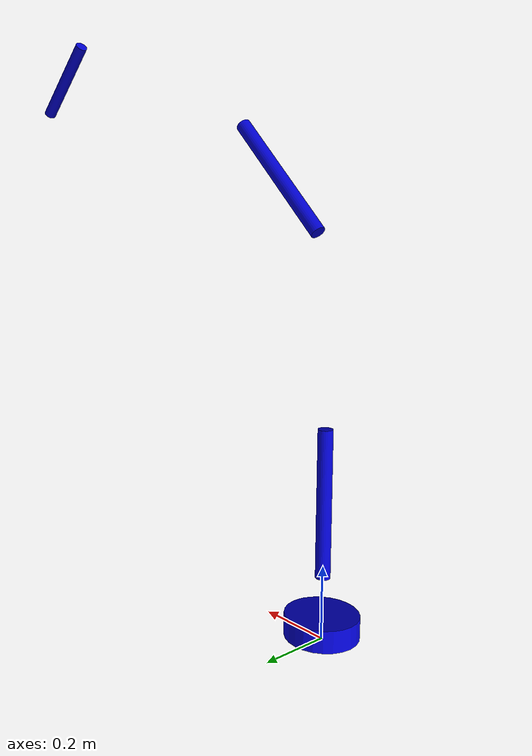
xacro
<?xml version="1.0"?>
<robot xmlns:xacro="http://www.ros.org/wiki/xacro" name="manip">
  <link name="zero_base">
  </link>
  <joint name="joint0" type="continuous">
    <origin xyz="0 0 0" rpy="0 0 0"/>
    <parent link="zero_base"/>
    <axis xyz="0 0 1"/>
    <child link="link1"/>
    <dynamics damping="0.05"/>
  </joint>

  <link name="link1">
    <visual>
      <geometry>
        <cylinder length="0.06" radius="0.1"/>
      </geometry>
      <origin xyz="0 0 0.04"/>
      <material name="blue">
	<color rgba="0 0 0.8 1"/>
      </material>
    </visual>
    <collision>
      <geometry>
        <cylinder length="0.06" radius="0.1"/>
      </geometry>
      <origin xyz="0 0 0.04"/>
    </collision>
    <inertial>
      <mass value="1"/>
      <inertia ixx="1e-3" ixy="0.0" ixz="0.0" iyy="1e-3" iyz="0.0" izz="1e-3"/>
    </inertial>
  </link>

  <joint name="joint1" type="continuous">
    <origin xyz="0 0 0.08" rpy="0 0 0"/>
    <parent link="link1"/>
    <axis xyz="1 0 0"/>
    <child link="link2"/>
    <dynamics damping="0.05"/>
  </joint>

  <link name="link2">
    <visual>
      <geometry>
        <cylinder length="0.4" radius="0.02"/>
      </geometry>
      <origin xyz="0 0 0.29"/>
      <material name="blue">
	<color rgba="0 0 .8 1"/>
      </material>
    </visual>
    <collision>
      <geometry>
        <cylinder length="0.4" radius="0.02"/>
      </geometry>
      <origin xyz="0 0 0.29"/>
    </collision>
    <inertial>
      <mass value="0.2"/>
      <inertia ixx="1e-3" ixy="0.0" ixz="0.0" iyy="1e-3" iyz="0.0" izz="1e-3"/>
    </inertial>
   </link>

 <joint name="joint2" type="continuous">
    <origin xyz="0.015 0 0.495" rpy="0 0 0"/>
    <parent link="link2"/>
    <axis xyz="1 0 0"/>
    <child link="link3"/>
    <dynamics damping="0.05"/>
  </joint>

    <link name="link3">
    <visual>
      <geometry>
        <cylinder length="0.4" radius="0.02"/>
      </geometry>
      <origin xyz="0.165 0 0.64" rpy="0 ${3.141692/4} 0"/>
      <material name="blue">
	<color rgba="0 0 0.8 1"/>
      </material>
    </visual>
    <collision>
      <geometry>
        <cylinder length="0.4" radius="0.02"/>
      </geometry>
      <origin xyz="0.165 0 0.64"  rpy="0 ${3.141692/4} 0"/>
    </collision>
    <inertial>
      <mass value="0.2"/>
      <inertia ixx="1e-3" ixy="0.0" ixz="0.0" iyy="1e-3" iyz="0.0" izz="1e-3"/>
    </inertial>
  </link>

  <joint name="joint3" type="continuous">
    <origin xyz="0.325 0 0.775" rpy="0 ${3.141692/4} 0"/>
    <parent link="link3"/>
    <axis xyz="1 0 0"/>
    <child link="link4"/>
    <dynamics damping="0.05"/>
  </joint>

    <link name="link4">
    <visual>
      <geometry>
        <cylinder length="0.3" radius="0.02"/>
      </geometry>
      <origin xyz="0.49 0 0.775" rpy="0 ${3.141692/2} 0"/>
      <material name="blue">
	<color rgba="0 0 0.8 1"/>
      </material>
    </visual>
    <collision>
      <geometry>
        <cylinder length="0.3" radius="0.02"/>
      </geometry>
      <origin xyz="0.49 0 0.775"  rpy="0 ${3.141692/2} 0"/>
    </collision>
    <inertial>
      <mass value="0.2"/>
      <inertia ixx="1e-3" ixy="0.0" ixz="0.0" iyy="1e-3" iyz="0.0" izz="1e-3"/>
    </inertial>
  </link>

  <gazebo reference="link1">
    <material>Gazebo/Blue</material>
    <mu1>0</mu1>
    <mu2>0</mu2>
  </gazebo>
  <gazebo reference="link2">
    <material>Gazebo/Blue</material>
    <mu1>0</mu1>
    <mu2>0</mu2>
  </gazebo>
  <gazebo reference="link3">
    <material>Gazebo/Blue</material>
    <mu1>0</mu1>
    <mu2>0</mu2>
  </gazebo>
  <gazebo reference="link4">
    <material>Gazebo/Blue</material>
    <mu1>0</mu1>
    <mu2>0</mu2>
  </gazebo>
  <transmission name="j1_trans">
    <type>transmission_interface/SimpleTransmission</type>
    <joint name="joint1">
      <hardwareInterface>EffortJointInterface</hardwareInterface>
    </joint>
    <actuator name="motor1">
      <mechanicalReduction>1</mechanicalReduction>
      <hardwareInterface>EffortJointInterface</hardwareInterface>
    </actuator>
  </transmission>
  <transmission name="j2_trans">
    <type>transmission_interface/SimpleTransmission</type>
    <joint name="joint2">
      <hardwareInterface>EffortJointInterface</hardwareInterface>
    </joint>
    <actuator name="motor2">
      <mechanicalReduction>1</mechanicalReduction>
      <hardwareInterface>EffortJointInterface</hardwareInterface>
    </actuator>
  </transmission>
  <transmission name="j3_trans">
    <type>transmission_interface/SimpleTransmission</type>
    <joint name="joint3">
      <hardwareInterface>EffortJointInterface</hardwareInterface>
    </joint>
    <actuator name="motor3">
      <mechanicalReduction>1</mechanicalReduction>
      <hardwareInterface>EffortJointInterface</hardwareInterface>
    </actuator>
  </transmission>

    <plugin name="gazebo_ros_control" filename="libgazebo_ros_control.so">
      <robotNamespace>/manip</robotNamespace>
    </plugin>
</robot>
